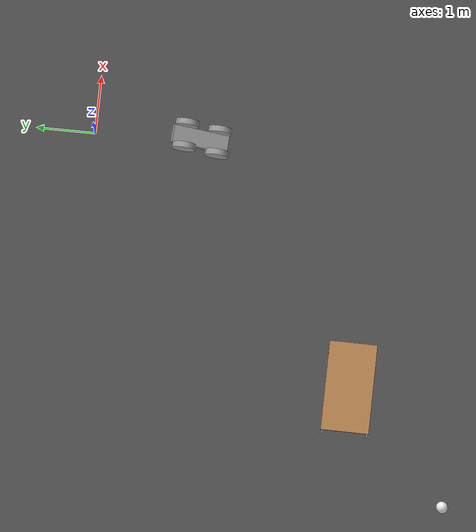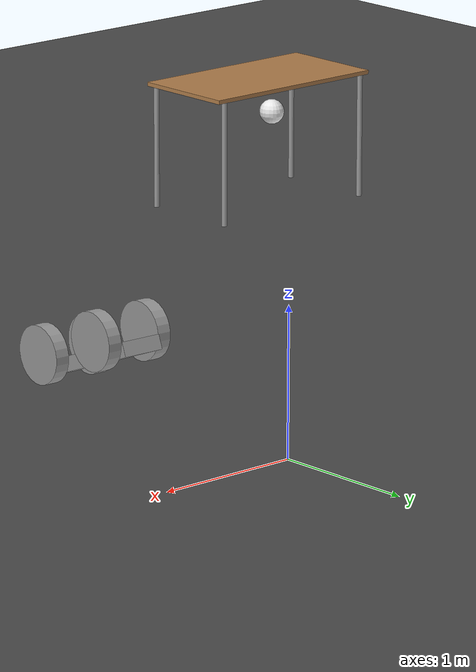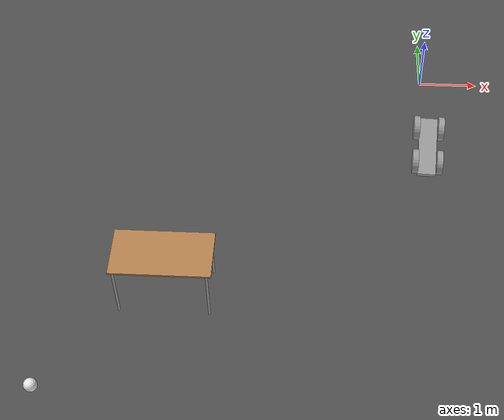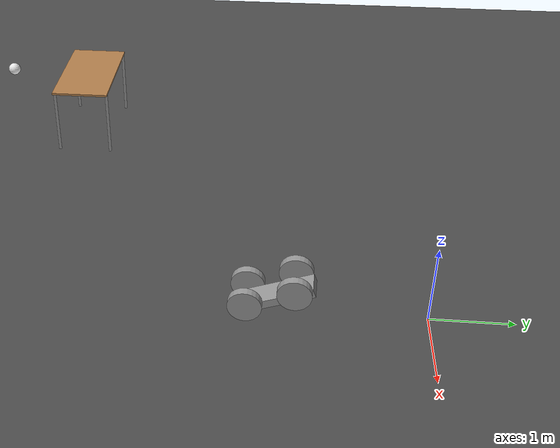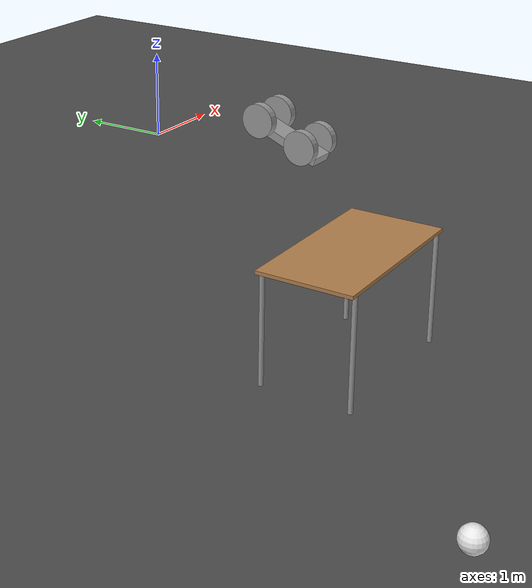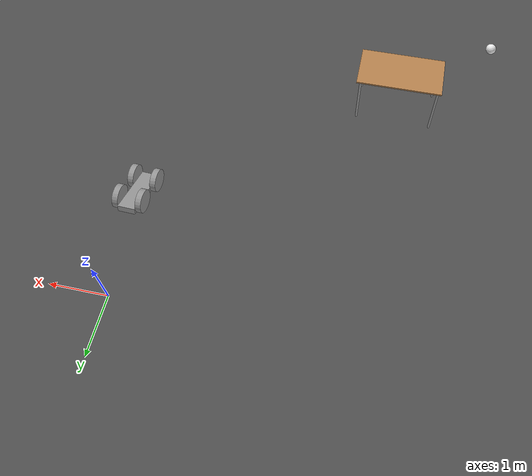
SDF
<sdf version="1.6">
 <world name="default">
  <model name="ground_plane">
   <static>1</static>
   <link name="link">
    <collision name="collision">
     <geometry><plane><normal>0 0 1</normal><size>100 100</size></plane></geometry>
     <surface>
      <contact><collide_bitmask>65535</collide_bitmask></contact>
      <friction><ode><mu>100</mu><mu2>50</mu2></ode></friction>
     </surface>
    </collision>
    <visual name="visual">
     <cast_shadows>0</cast_shadows>
     <geometry><plane><normal>0 0 1</normal><size>100 100</size></plane></geometry>
     <material>
      <script><uri>file://media/materials/scripts/gazebo.material</uri><name>Gazebo/Grey</name></script>
     </material>
    </visual>
   </link>
  </model>
  <model name="table">
   <static>1</static>
   <link name="link">
    <collision name="surface">
     <pose>0 0 1 0 -0 0</pose>
     <geometry><box><size>1.5 0.8 0.03</size></box></geometry>
     <surface><friction><ode><mu>0.6</mu><mu2>0.6</mu2></ode></friction></surface>
    </collision>
    <visual name="visual1">
     <pose>0 0 1 0 -0 0</pose>
     <geometry><box><size>1.5 0.8 0.03</size></box></geometry>
     <material>
      <script><uri>file://media/materials/scripts/gazebo.material</uri><name>Gazebo/Wood</name></script>
     </material>
    </visual>
    <collision name="front_left_leg">
     <pose>0.68 0.38 0.5 0 -0 0</pose>
     <geometry><cylinder><radius>0.02</radius><length>1</length></cylinder></geometry>
    </collision>
    <visual name="front_left_leg">
     <pose>0.68 0.38 0.5 0 -0 0</pose>
     <geometry><cylinder><radius>0.02</radius><length>1</length></cylinder></geometry>
     <material>
      <script><uri>file://media/materials/scripts/gazebo.material</uri><name>Gazebo/Grey</name></script>
     </material>
    </visual>
    <collision name="front_right_leg">
     <pose>0.68 -0.38 0.5 0 -0 0</pose>
     <geometry><cylinder><radius>0.02</radius><length>1</length></cylinder></geometry>
    </collision>
    <visual name="front_right_leg">
     <pose>0.68 -0.38 0.5 0 -0 0</pose>
     <geometry><cylinder><radius>0.02</radius><length>1</length></cylinder></geometry>
     <material>
      <script><uri>file://media/materials/scripts/gazebo.material</uri><name>Gazebo/Grey</name></script>
     </material>
    </visual>
    <collision name="back_right_leg">
     <pose>-0.68 -0.38 0.5 0 -0 0</pose>
     <geometry><cylinder><radius>0.02</radius><length>1</length></cylinder></geometry>
    </collision>
    <visual name="back_right_leg">
     <pose>-0.68 -0.38 0.5 0 -0 0</pose>
     <geometry><cylinder><radius>0.02</radius><length>1</length></cylinder></geometry>
     <material>
      <script><uri>file://media/materials/scripts/gazebo.material</uri><name>Gazebo/Grey</name></script>
     </material>
    </visual>
    <collision name="back_left_leg">
     <pose>-0.68 0.38 0.5 0 -0 0</pose>
     <geometry><cylinder><radius>0.02</radius><length>1</length></cylinder></geometry>
    </collision>
    <visual name="back_left_leg">
     <pose>-0.68 0.38 0.5 0 -0 0</pose>
     <geometry><cylinder><radius>0.02</radius><length>1</length></cylinder></geometry>
     <material>
      <script><uri>file://media/materials/scripts/gazebo.material</uri><name>Gazebo/Grey</name></script>
     </material>
    </visual>
   </link>
   <pose>-4.01455 -4.73402 0 0 -0 0</pose>
  </model>
  <model name="asphalt_plane">
   <static>1</static>
   <link name="link">
    <collision name="collision"><geometry><box><size>20 20 0.1</size></box></geometry></collision>
    <visual name="visual">
     <cast_shadows>0</cast_shadows>
     <geometry><box><size>20 20 0.1</size></box></geometry>
     <material>
      <script>
       <uri>model://asphalt_plane/materials/scripts</uri>
       <uri>model://asphalt_plane/materials/textures</uri>
       <name>vrc/asphalt</name>
      </script>
     </material>
    </visual>
   </link>
   <pose>0.120009 -0.032107 0 0 -0 0</pose>
  </model>
  <model name="myrobot">
   <link name="link_0">
    <pose>1.89771 0.363402 0 0 -0 0</pose>
    <inertial>
     <mass>1</mass>
     <inertia>
      <ixx>0.166667</ixx>
      <ixy>0</ixy>
      <ixz>0</ixz>
      <iyy>0.166667</iyy>
      <iyz>0</iyz>
      <izz>0.166667</izz>
     </inertia>
     <pose>0 0 0.2 0 -0 0</pose>
    </inertial>
    <visual name="visual">
     <geometry><box><size>0.3 1 0.1</size></box></geometry>
     <material>
      <lighting>1</lighting>
      <script><uri>file://media/materials/scripts/gazebo.material</uri><name>Gazebo/Grey</name></script>
      <shader type="pixel"><normal_map>__default__</normal_map></shader>
      <ambient>0.3 0.3 0.3 1</ambient>
      <diffuse>0.7 0.7 0.7 1</diffuse>
      <specular>0.01 0.01 0.01 1</specular>
      <emissive>0 0 0 1</emissive>
     </material>
    </visual>
    <collision name="collision">
     <geometry><box><size>0.3 1 0.1</size></box></geometry>
     <surface>
      <friction>
       <ode><mu>1</mu><mu2>1</mu2><fdir1>0 0 0</fdir1><slip1>0</slip1><slip2>0</slip2></ode>
       <torsional>
        <coefficient>1</coefficient>
        <patch_radius>0</patch_radius>
        <surface_radius>0</surface_radius>
        <use_patch_radius>1</use_patch_radius>
        <ode><slip>0</slip></ode>
       </torsional>
      </friction>
      <bounce><restitution_coefficient>0</restitution_coefficient><threshold>1e+06</threshold></bounce>
      <contact>
       <collide_without_contact>0</collide_without_contact>
       <collide_without_contact_bitmask>1</collide_without_contact_bitmask>
       <collide_bitmask>1</collide_bitmask>
       <ode>
        <soft_cfm>0</soft_cfm>
        <soft_erp>0.2</soft_erp>
        <kp>1e+13</kp>
        <kd>1</kd>
        <max_vel>0.01</max_vel>
        <min_depth>0</min_depth>
       </ode>
       <bullet>
        <split_impulse>1</split_impulse>
        <split_impulse_penetration_threshold>-0.01</split_impulse_penetration_threshold>
        <soft_cfm>0</soft_cfm>
        <soft_erp>0.2</soft_erp>
        <kp>1e+13</kp>
        <kd>1</kd>
       </bullet>
      </contact>
     </surface>
    </collision>
   </link>
   <link name="link_1_clone_clone_0">
    <pose>1.69765 -0.136569 0.1 4.8e-05 1.5707 1.57075</pose>
    <inertial>
     <mass>1</mass>
     <inertia><ixx>0.145833</ixx><ixy>0</ixy><ixz>0</ixz><iyy>0.145833</iyy><iyz>0</iyz><izz>0.125</izz></inertia>
     <pose>0 0 0.2 -0 1.5707 1.5707</pose>
    </inertial>
    <visual name="visual">
     <pose>0 0 0.2 1.5707 -0 0</pose>
     <geometry><cylinder><radius>0.2</radius><length>0.1</length></cylinder></geometry>
     <material>
      <lighting>1</lighting>
      <script><uri>file://media/materials/scripts/gazebo.material</uri><name>Gazebo/Grey</name></script>
      <shader type="pixel"><normal_map>__default__</normal_map></shader>
      <ambient>0.3 0.3 0.3 1</ambient>
      <diffuse>0.7 0.7 0.7 1</diffuse>
      <specular>0.01 0.01 0.01 1</specular>
      <emissive>0 0 0 1</emissive>
     </material>
    </visual>
    <collision name="collision">
     <pose>0 0 0.2 1.5707 -0 0</pose>
     <geometry><cylinder><radius>0.2</radius><length>0.1</length></cylinder></geometry>
     <surface>
      <friction>
       <ode><mu>1</mu><mu2>1</mu2><fdir1>0 0 0</fdir1><slip1>0</slip1><slip2>0</slip2></ode>
       <torsional>
        <coefficient>1</coefficient>
        <patch_radius>0</patch_radius>
        <surface_radius>0</surface_radius>
        <use_patch_radius>1</use_patch_radius>
        <ode><slip>0</slip></ode>
       </torsional>
      </friction>
      <bounce><restitution_coefficient>0</restitution_coefficient><threshold>1e+06</threshold></bounce>
      <contact>
       <collide_without_contact>0</collide_without_contact>
       <collide_without_contact_bitmask>1</collide_without_contact_bitmask>
       <collide_bitmask>1</collide_bitmask>
       <ode>
        <soft_cfm>0</soft_cfm>
        <soft_erp>0.2</soft_erp>
        <kp>1e+13</kp>
        <kd>1</kd>
        <max_vel>0.01</max_vel>
        <min_depth>0</min_depth>
       </ode>
       <bullet>
        <split_impulse>1</split_impulse>
        <split_impulse_penetration_threshold>-0.01</split_impulse_penetration_threshold>
        <soft_cfm>0</soft_cfm>
        <soft_erp>0.2</soft_erp>
        <kp>1e+13</kp>
        <kd>1</kd>
       </bullet>
      </contact>
     </surface>
    </collision>
   </link>
   <link name="link_1_clone_clone_0_clone">
    <pose>2.09773 -0.136569 0.1 -0.000572 1.5707 1.57013</pose>
    <inertial>
     <mass>1</mass>
     <inertia><ixx>0.145833</ixx><ixy>0</ixy><ixz>0</ixz><iyy>0.145833</iyy><iyz>0</iyz><izz>0.125</izz></inertia>
     <pose>0 0 0.2 -0 1.5707 1.5707</pose>
    </inertial>
    <visual name="visual">
     <pose>0 0 0.2 1.5707 -0 0</pose>
     <geometry><cylinder><radius>0.2</radius><length>0.1</length></cylinder></geometry>
     <material>
      <lighting>1</lighting>
      <script><uri>file://media/materials/scripts/gazebo.material</uri><name>Gazebo/Grey</name></script>
      <shader type="pixel"><normal_map>__default__</normal_map></shader>
      <ambient>0.3 0.3 0.3 1</ambient>
      <diffuse>0.7 0.7 0.7 1</diffuse>
      <specular>0.01 0.01 0.01 1</specular>
      <emissive>0 0 0 1</emissive>
     </material>
    </visual>
    <collision name="collision">
     <pose>0 0 0.2 1.5707 -0 0</pose>
     <geometry><cylinder><radius>0.2</radius><length>0.1</length></cylinder></geometry>
     <surface>
      <friction>
       <ode><mu>1</mu><mu2>1</mu2><fdir1>0 0 0</fdir1><slip1>0</slip1><slip2>0</slip2></ode>
       <torsional>
        <coefficient>1</coefficient>
        <patch_radius>0</patch_radius>
        <surface_radius>0</surface_radius>
        <use_patch_radius>1</use_patch_radius>
        <ode><slip>0</slip></ode>
       </torsional>
      </friction>
      <bounce><restitution_coefficient>0</restitution_coefficient><threshold>1e+06</threshold></bounce>
      <contact>
       <collide_without_contact>0</collide_without_contact>
       <collide_without_contact_bitmask>1</collide_without_contact_bitmask>
       <collide_bitmask>1</collide_bitmask>
       <ode>
        <soft_cfm>0</soft_cfm>
        <soft_erp>0.2</soft_erp>
        <kp>1e+13</kp>
        <kd>1</kd>
        <max_vel>0.01</max_vel>
        <min_depth>0</min_depth>
       </ode>
       <bullet>
        <split_impulse>1</split_impulse>
        <split_impulse_penetration_threshold>-0.01</split_impulse_penetration_threshold>
        <soft_cfm>0</soft_cfm>
        <soft_erp>0.2</soft_erp>
        <kp>1e+13</kp>
        <kd>1</kd>
       </bullet>
      </contact>
     </surface>
    </collision>
   </link>
   <link name="link_1_clone_clone_0_clone_0">
    <pose>2.09773 0.463373 0.1 -0.000572 1.5707 1.57013</pose>
    <inertial>
     <mass>1</mass>
     <inertia><ixx>0.145833</ixx><ixy>0</ixy><ixz>0</ixz><iyy>0.145833</iyy><iyz>0</iyz><izz>0.125</izz></inertia>
     <pose>0 0 0.2 -0 1.5707 1.5707</pose>
    </inertial>
    <visual name="visual">
     <pose>0 0 0.2 1.5707 -0 0</pose>
     <geometry><cylinder><radius>0.2</radius><length>0.1</length></cylinder></geometry>
     <material>
      <lighting>1</lighting>
      <script><uri>file://media/materials/scripts/gazebo.material</uri><name>Gazebo/Grey</name></script>
      <shader type="pixel"><normal_map>__default__</normal_map></shader>
      <ambient>0.3 0.3 0.3 1</ambient>
      <diffuse>0.7 0.7 0.7 1</diffuse>
      <specular>0.01 0.01 0.01 1</specular>
      <emissive>0 0 0 1</emissive>
     </material>
    </visual>
    <collision name="collision">
     <pose>0 0 0.2 1.5707 -0 0</pose>
     <geometry><cylinder><radius>0.2</radius><length>0.1</length></cylinder></geometry>
     <surface>
      <friction>
       <ode><mu>1</mu><mu2>1</mu2><fdir1>0 0 0</fdir1><slip1>0</slip1><slip2>0</slip2></ode>
       <torsional>
        <coefficient>1</coefficient>
        <patch_radius>0</patch_radius>
        <surface_radius>0</surface_radius>
        <use_patch_radius>1</use_patch_radius>
        <ode><slip>0</slip></ode>
       </torsional>
      </friction>
      <bounce><restitution_coefficient>0</restitution_coefficient><threshold>1e+06</threshold></bounce>
      <contact>
       <collide_without_contact>0</collide_without_contact>
       <collide_without_contact_bitmask>1</collide_without_contact_bitmask>
       <collide_bitmask>1</collide_bitmask>
       <ode>
        <soft_cfm>0</soft_cfm>
        <soft_erp>0.2</soft_erp>
        <kp>1e+13</kp>
        <kd>1</kd>
        <max_vel>0.01</max_vel>
        <min_depth>0</min_depth>
       </ode>
       <bullet>
        <split_impulse>1</split_impulse>
        <split_impulse_penetration_threshold>-0.01</split_impulse_penetration_threshold>
        <soft_cfm>0</soft_cfm>
        <soft_erp>0.2</soft_erp>
        <kp>1e+13</kp>
        <kd>1</kd>
       </bullet>
      </contact>
     </surface>
    </collision>
   </link>
   <link name="link_1_clone_clone_0_clone_1">
    <pose>1.69765 0.463373 0.1 -0.000572 1.5707 1.57013</pose>
    <inertial>
     <mass>1</mass>
     <inertia><ixx>0.145833</ixx><ixy>0</ixy><ixz>0</ixz><iyy>0.145833</iyy><iyz>0</iyz><izz>0.125</izz></inertia>
     <pose>0 0 0.2 -0 1.5707 1.5707</pose>
    </inertial>
    <visual name="visual">
     <pose>0 0 0.2 1.5707 -0 0</pose>
     <geometry><cylinder><radius>0.2</radius><length>0.1</length></cylinder></geometry>
     <material>
      <lighting>1</lighting>
      <script><uri>file://media/materials/scripts/gazebo.material</uri><name>Gazebo/Grey</name></script>
      <shader type="pixel"><normal_map>__default__</normal_map></shader>
      <ambient>0.3 0.3 0.3 1</ambient>
      <diffuse>0.7 0.7 0.7 1</diffuse>
      <specular>0.01 0.01 0.01 1</specular>
      <emissive>0 0 0 1</emissive>
     </material>
    </visual>
    <collision name="collision">
     <pose>0 0 0.2 1.5707 -0 0</pose>
     <geometry><cylinder><radius>0.2</radius><length>0.1</length></cylinder></geometry>
     <surface>
      <friction>
       <ode><mu>1</mu><mu2>1</mu2><fdir1>0 0 0</fdir1><slip1>0</slip1><slip2>0</slip2></ode>
       <torsional>
        <coefficient>1</coefficient>
        <patch_radius>0</patch_radius>
        <surface_radius>0</surface_radius>
        <use_patch_radius>1</use_patch_radius>
        <ode><slip>0</slip></ode>
       </torsional>
      </friction>
      <bounce><restitution_coefficient>0</restitution_coefficient><threshold>1e+06</threshold></bounce>
      <contact>
       <collide_without_contact>0</collide_without_contact>
       <collide_without_contact_bitmask>1</collide_without_contact_bitmask>
       <collide_bitmask>1</collide_bitmask>
       <ode>
        <soft_cfm>0</soft_cfm>
        <soft_erp>0.2</soft_erp>
        <kp>1e+13</kp>
        <kd>1</kd>
        <max_vel>0.01</max_vel>
        <min_depth>0</min_depth>
       </ode>
       <bullet>
        <split_impulse>1</split_impulse>
        <split_impulse_penetration_threshold>-0.01</split_impulse_penetration_threshold>
        <soft_cfm>0</soft_cfm>
        <soft_erp>0.2</soft_erp>
        <kp>1e+13</kp>
        <kd>1</kd>
       </bullet>
      </contact>
     </surface>
    </collision>
   </link>
   <joint name="link_0_JOINT_5" type="revolute">
    <parent>link_0</parent>
    <child>link_1_clone_clone_0</child>
    <axis>
     <xyz>0 1 0</xyz>
     <use_parent_model_frame>0</use_parent_model_frame>
     <limit>
      <lower>-1.79769e+308</lower>
      <upper>1.79769e+308</upper>
      <effort>-1</effort>
      <velocity>-1</velocity>
     </limit>
     <dynamics>
      <spring_reference>0</spring_reference>
      <spring_stiffness>0</spring_stiffness>
      <damping>0</damping>
      <friction>0</friction>
     </dynamics>
    </axis>
    <physics>
     <ode><limit><cfm>0</cfm><erp>0.2</erp></limit><suspension><cfm>0</cfm><erp>0.2</erp></suspension></ode>
    </physics>
   </joint>
   <joint name="link_0_JOINT_6" type="revolute">
    <parent>link_0</parent>
    <child>link_1_clone_clone_0_clone</child>
    <axis>
     <xyz>0 1 0</xyz>
     <use_parent_model_frame>0</use_parent_model_frame>
     <limit>
      <lower>-1.79769e+308</lower>
      <upper>1.79769e+308</upper>
      <effort>-1</effort>
      <velocity>-1</velocity>
     </limit>
     <dynamics>
      <spring_reference>0</spring_reference>
      <spring_stiffness>0</spring_stiffness>
      <damping>0</damping>
      <friction>0</friction>
     </dynamics>
    </axis>
    <physics>
     <ode><limit><cfm>0</cfm><erp>0.2</erp></limit><suspension><cfm>0</cfm><erp>0.2</erp></suspension></ode>
    </physics>
   </joint>
   <joint name="link_0_JOINT_8" type="revolute">
    <parent>link_0</parent>
    <child>link_1_clone_clone_0_clone_0</child>
    <axis>
     <xyz>0 1 0</xyz>
     <use_parent_model_frame>0</use_parent_model_frame>
     <limit>
      <lower>-1.79769e+308</lower>
      <upper>1.79769e+308</upper>
      <effort>-1</effort>
      <velocity>-1</velocity>
     </limit>
     <dynamics>
      <spring_reference>0</spring_reference>
      <spring_stiffness>0</spring_stiffness>
      <damping>0</damping>
     </dynamics>
    </axis>
    <physics>
     <ode><limit><cfm>0</cfm><erp>0.2</erp></limit><suspension><cfm>0</cfm><erp>0.2</erp></suspension></ode>
    </physics>
   </joint>
   <joint name="link_0_JOINT_9" type="revolute">
    <parent>link_0</parent>
    <child>link_1_clone_clone_0_clone_1</child>
    <axis>
     <xyz>0 1 0</xyz>
     <use_parent_model_frame>0</use_parent_model_frame>
     <limit>
      <lower>-1.79769e+308</lower>
      <upper>1.79769e+308</upper>
      <effort>-1</effort>
      <velocity>-1</velocity>
     </limit>
     <dynamics>
      <spring_reference>0</spring_reference>
      <spring_stiffness>0</spring_stiffness>
      <damping>0</damping>
     </dynamics>
    </axis>
    <physics>
     <ode><limit><cfm>0</cfm><erp>0.2</erp></limit><suspension><cfm>0</cfm><erp>0.2</erp></suspension></ode>
    </physics>
   </joint>
   <static>0</static>
   <pose>-1.86887 -2.04659 0.146138 0.371317 -1.1e-05 -0.043097</pose>
  </model>
  <model name="myball">
   <link name="link_0">
    <inertial>
     <mass>1</mass>
     <inertia><ixx>0.1</ixx><ixy>0</ixy><ixz>0</ixz><iyy>0.1</iyy><iyz>0</iyz><izz>0.1</izz></inertia>
    </inertial>
    <visual name="visual">
     <geometry><sphere><radius>0.1</radius></sphere></geometry>
     <material>
      <lighting>1</lighting>
      <script><uri>file://media/materials/scripts/gazebo.material</uri><name>Gazebo/White</name></script>
      <shader type="pixel"><normal_map>__default__</normal_map></shader>
      <ambient>1 1 1 1</ambient>
      <diffuse>1 1 1 1</diffuse>
      <specular>1 1 1 1</specular>
      <emissive>1 1 1 1</emissive>
     </material>
    </visual>
    <collision name="collision">
     <geometry><sphere><radius>0.1</radius></sphere></geometry>
     <surface>
      <friction>
       <ode><mu>1</mu><mu2>1</mu2><fdir1>0 0 0</fdir1><slip1>0</slip1><slip2>0</slip2></ode>
       <torsional>
        <coefficient>1</coefficient>
        <patch_radius>0</patch_radius>
        <surface_radius>0</surface_radius>
        <use_patch_radius>1</use_patch_radius>
        <ode><slip>0</slip></ode>
       </torsional>
      </friction>
      <bounce><restitution_coefficient>0</restitution_coefficient><threshold>1e+06</threshold></bounce>
      <contact>
       <collide_without_contact>0</collide_without_contact>
       <collide_without_contact_bitmask>1</collide_without_contact_bitmask>
       <collide_bitmask>1</collide_bitmask>
       <ode>
        <soft_cfm>0</soft_cfm>
        <soft_erp>0.2</soft_erp>
        <kp>1e+13</kp>
        <kd>1</kd>
        <max_vel>0.01</max_vel>
        <min_depth>0</min_depth>
       </ode>
       <bullet>
        <split_impulse>1</split_impulse>
        <split_impulse_penetration_threshold>-0.01</split_impulse_penetration_threshold>
        <soft_cfm>0</soft_cfm>
        <soft_erp>0.2</soft_erp>
        <kp>1e+13</kp>
        <kd>1</kd>
       </bullet>
      </contact>
     </surface>
    </collision>
   </link>
   <static>0</static>
   <pose>-5.75123 -6.49892 0.15 0 -0 0</pose>
  </model>
 </world>
</sdf>
